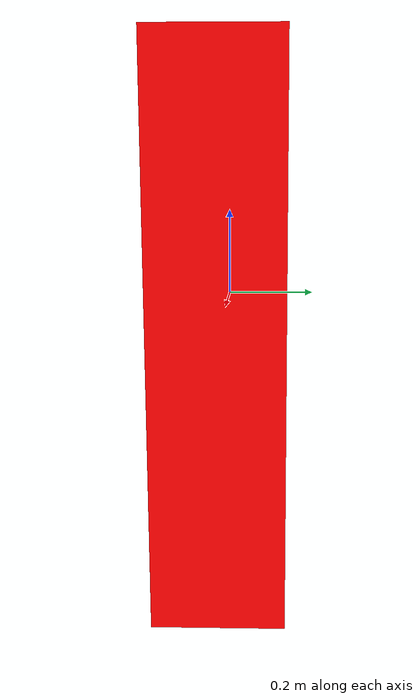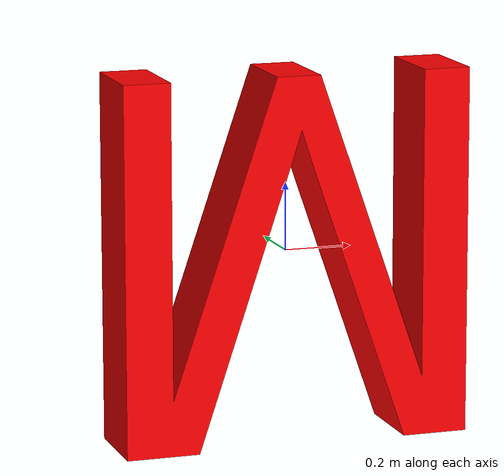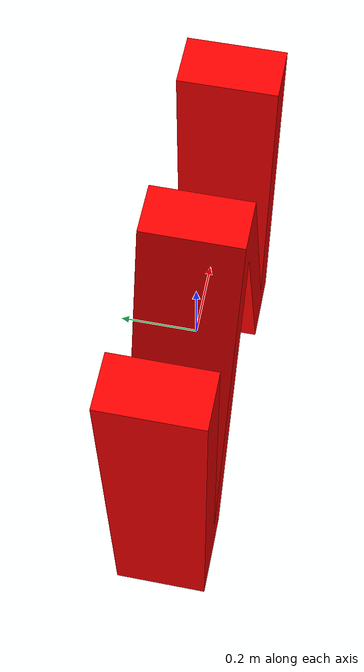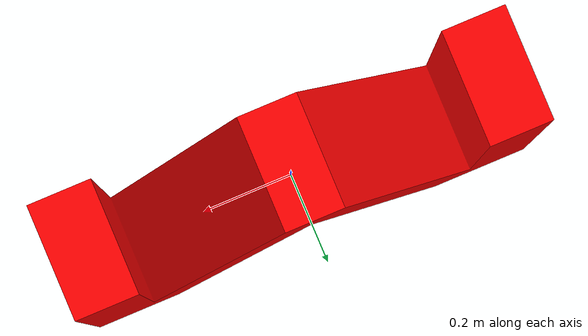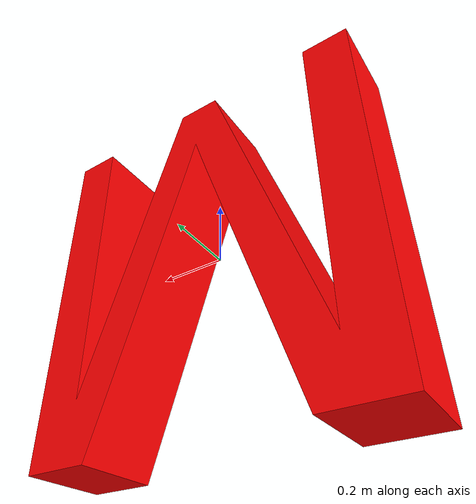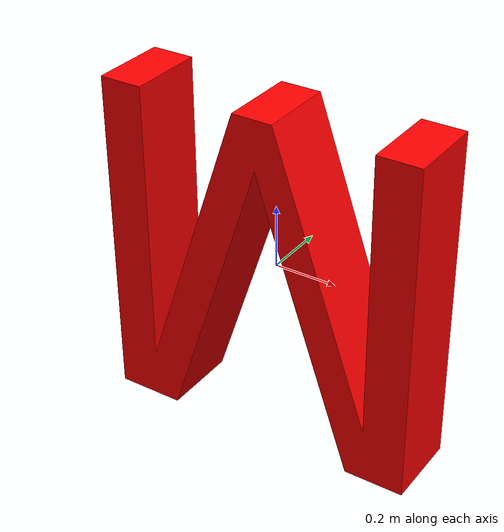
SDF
<sdf version="1.7">
  <model name="M">
    <link name="base_link">
      <inertial>
        <mass>1.0</mass>
        <inertia>
          <ixx>4.122e-01</ixx>
          <ixy>0.000e+00</ixy>
          <ixz>0.000e+00</ixz>
          <iyy>7.478e-01</iyy>
          <iyz>0.000e+00</iyz>
          <izz>3.773e-01</izz>
        </inertia>
      </inertial>
      <visual name="M_visual">
        <geometry>
          <mesh>
            <scale>1 1 1</scale>
            <uri>M_processed.obj</uri>
          </mesh>
        </geometry>
        <material>
          <diffuse>1.0 0.0 0.0 1.0</diffuse>
        </material>
      </visual>
      <collision name="M_collision">
        <pose>2.615e-03 0.000e+00 -2.428e-02 0 0 0</pose>
        <geometry>
          <box>
            <size>2.068e+00 5.000e-01 2.167e+00</size>
          </box>
        </geometry>
      </collision>
    </link>
  </model>
</sdf>
